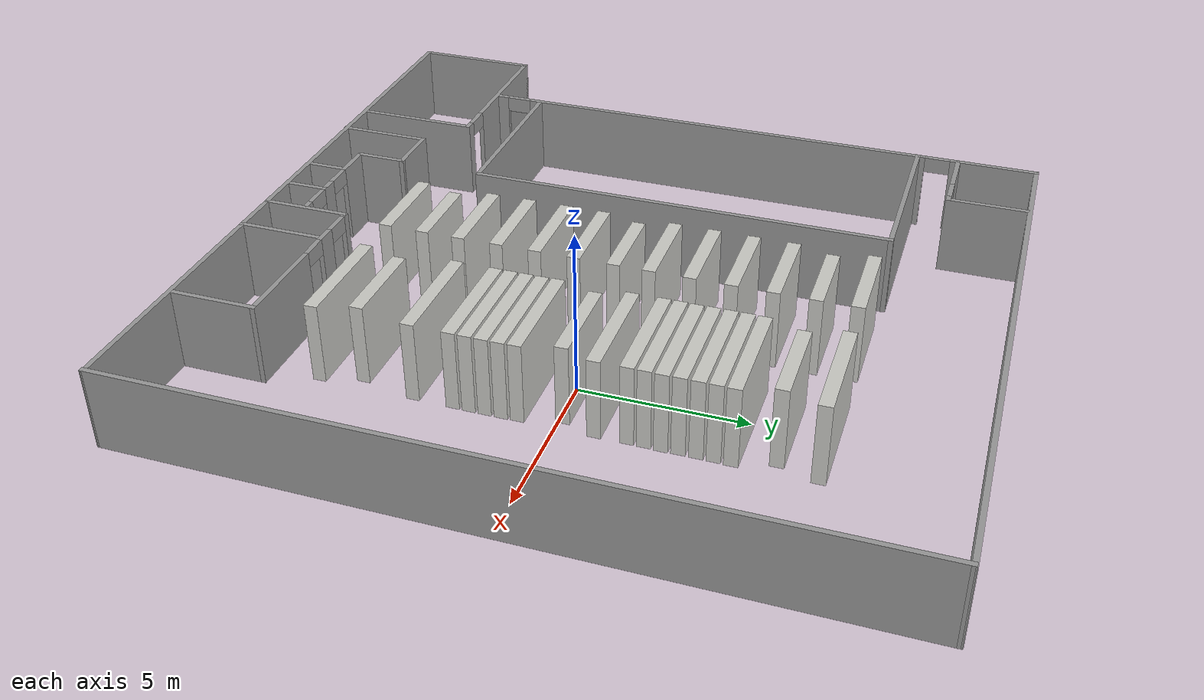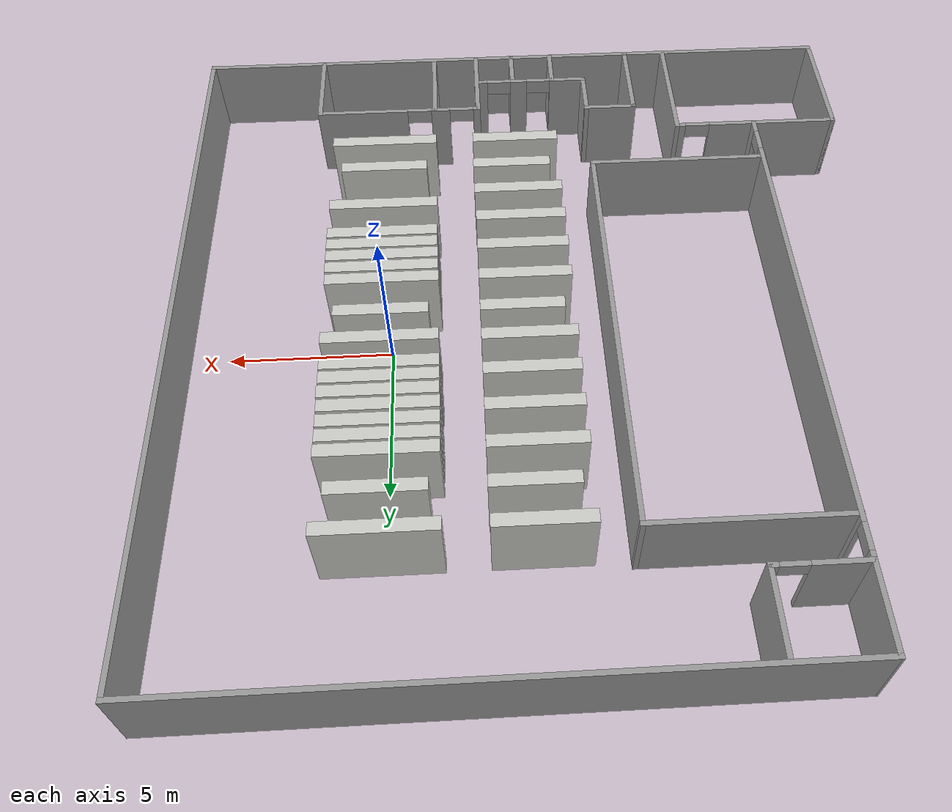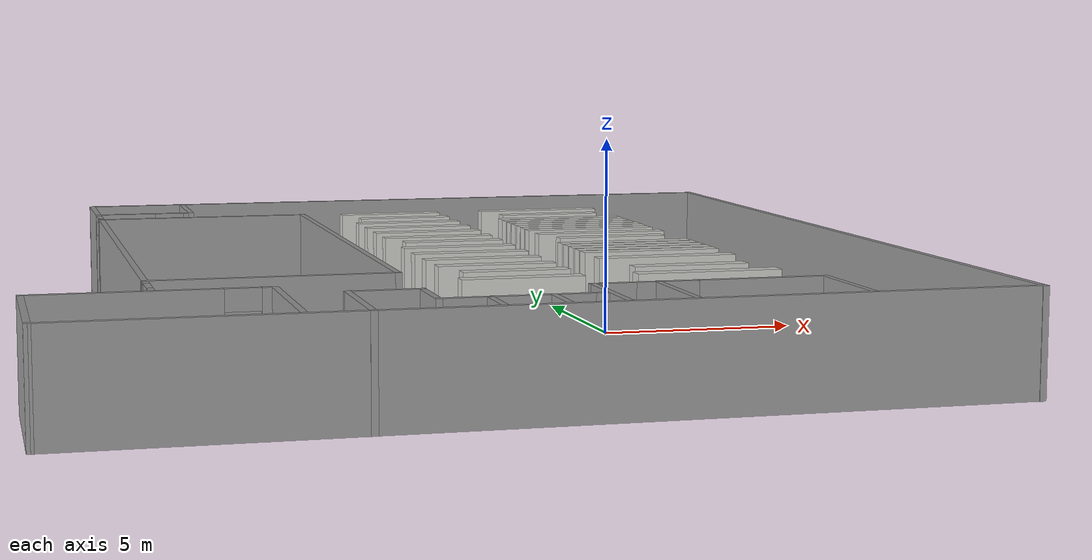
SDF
<?xml version='1.0'?>
<sdf version='1.6'>
  <model name='bi_mi_og'>
    <pose frame=''>-4.32052 0.063195 0 0 -0 0</pose>
    <link name='Wall_100'>
      <collision name='Wall_100_Collision'>
        <geometry>
          <box>
            <size>3.4 0.4 2.5</size>
          </box>
        </geometry>
        <pose frame=''>0 0 1.25 0 -0 0</pose>
      </collision>
      <visual name='Wall_100_Visual'>
        <pose frame=''>0 0 1.25 0 -0 0</pose>
        <geometry>
          <box>
            <size>3.4 0.4 2.5</size>
          </box>
        </geometry>
        <material>
          <script>
            <uri>file://media/materials/scripts/gazebo.material</uri>
            <name>Gazebo/CeilingTiled</name>
          </script>
          <ambient>0.435294 0.796078 0.67451 1</ambient>
        </material>
        <meta>
          <layer>0</layer>
        </meta>
      </visual>
      <pose frame=''>4.47382 -1.12861 0 0 -0 0</pose>
    </link>
    <link name='Wall_102'>
      <collision name='Wall_102_Collision'>
        <geometry>
          <box>
            <size>3.4 0.4 2.5</size>
          </box>
        </geometry>
        <pose frame=''>0 0 1.25 0 -0 0</pose>
      </collision>
      <visual name='Wall_102_Visual'>
        <pose frame=''>0 0 1.25 0 -0 0</pose>
        <geometry>
          <box>
            <size>3.4 0.4 2.5</size>
          </box>
        </geometry>
        <material>
          <script>
            <uri>file://media/materials/scripts/gazebo.material</uri>
            <name>Gazebo/CeilingTiled</name>
          </script>
          <ambient>0.435294 0.796078 0.67451 1</ambient>
        </material>
        <meta>
          <layer>0</layer>
        </meta>
      </visual>
      <pose frame=''>4.48903 -1.6002 0 0 -0 0</pose>
    </link>
    <link name='Wall_104'>
      <collision name='Wall_104_Collision'>
        <geometry>
          <box>
            <size>3.4 0.4 2.5</size>
          </box>
        </geometry>
        <pose frame=''>0 0 1.25 0 -0 0</pose>
      </collision>
      <visual name='Wall_104_Visual'>
        <pose frame=''>0 0 1.25 0 -0 0</pose>
        <geometry>
          <box>
            <size>3.4 0.4 2.5</size>
          </box>
        </geometry>
        <material>
          <script>
            <uri>file://media/materials/scripts/gazebo.material</uri>
            <name>Gazebo/CeilingTiled</name>
          </script>
          <ambient>0.435294 0.796078 0.67451 1</ambient>
        </material>
        <meta>
          <layer>0</layer>
        </meta>
      </visual>
      <pose frame=''>4.48824 -2.07161 0 0 -0 0</pose>
    </link>
    <link name='Wall_106'>
      <collision name='Wall_106_Collision'>
        <geometry>
          <box>
            <size>3.4 0.4 2.5</size>
          </box>
        </geometry>
        <pose frame=''>0 0 1.25 0 -0 0</pose>
      </collision>
      <visual name='Wall_106_Visual'>
        <pose frame=''>0 0 1.25 0 -0 0</pose>
        <geometry>
          <box>
            <size>3.4 0.4 2.5</size>
          </box>
        </geometry>
        <material>
          <script>
            <uri>file://media/materials/scripts/gazebo.material</uri>
            <name>Gazebo/CeilingTiled</name>
          </script>
          <ambient>0.435294 0.796078 0.67451 1</ambient>
        </material>
        <meta>
          <layer>0</layer>
        </meta>
      </visual>
      <pose frame=''>4.48903 -2.54278 0 0 -0 0</pose>
    </link>
    <link name='Wall_108'>
      <collision name='Wall_108_Collision'>
        <geometry>
          <box>
            <size>3.4 0.4 2.5</size>
          </box>
        </geometry>
        <pose frame=''>0 0 1.25 0 -0 0</pose>
      </collision>
      <visual name='Wall_108_Visual'>
        <pose frame=''>0 0 1.25 0 -0 0</pose>
        <geometry>
          <box>
            <size>3.4 0.4 2.5</size>
          </box>
        </geometry>
        <material>
          <script>
            <uri>file://media/materials/scripts/gazebo.material</uri>
            <name>Gazebo/CeilingTiled</name>
          </script>
          <ambient>0.435294 0.796078 0.67451 1</ambient>
        </material>
        <meta>
          <layer>0</layer>
        </meta>
      </visual>
      <pose frame=''>4.48824 -3.01499 0 0 -0 0</pose>
    </link>
    <link name='Wall_11'>
      <collision name='Wall_11_Collision'>
        <geometry>
          <box>
            <size>21.3169 0.15 2.5</size>
          </box>
        </geometry>
        <pose frame=''>0 0 1.25 0 -0 0</pose>
      </collision>
      <visual name='Wall_11_Visual'>
        <pose frame=''>0 0 1.25 0 -0 0</pose>
        <geometry>
          <box>
            <size>21.3169 0.15 2.5</size>
          </box>
        </geometry>
        <material>
          <script>
            <uri>file://media/materials/scripts/gazebo.material</uri>
            <name>Gazebo/Grey</name>
          </script>
          <ambient>1 1 1 1</ambient>
        </material>
        <meta>
          <layer>0</layer>
        </meta>
      </visual>
      <pose frame=''>-3.3e-05 -11.1726 0 0 -0 0.001286</pose>
    </link>
    <link name='Wall_110'>
      <collision name='Wall_110_Collision'>
        <geometry>
          <box>
            <size>3.4 0.4 2.5</size>
          </box>
        </geometry>
        <pose frame=''>0 0 1.25 0 -0 0</pose>
      </collision>
      <visual name='Wall_110_Visual'>
        <pose frame=''>0 0 1.25 0 -0 0</pose>
        <geometry>
          <box>
            <size>3.4 0.4 2.5</size>
          </box>
        </geometry>
        <material>
          <script>
            <uri>file://media/materials/scripts/gazebo.material</uri>
            <name>Gazebo/CeilingTiled</name>
          </script>
          <ambient>0.435294 0.796078 0.67451 1</ambient>
        </material>
        <meta>
          <layer>0</layer>
        </meta>
      </visual>
      <pose frame=''>4.47361 -4.21578 0 0 -0 0</pose>
    </link>
    <link name='Wall_112'>
      <collision name='Wall_112_Collision'>
        <geometry>
          <box>
            <size>3.4 0.4 2.5</size>
          </box>
        </geometry>
        <pose frame=''>0 0 1.25 0 -0 0</pose>
      </collision>
      <visual name='Wall_112_Visual'>
        <pose frame=''>0 0 1.25 0 -0 0</pose>
        <geometry>
          <box>
            <size>3.4 0.4 2.5</size>
          </box>
        </geometry>
        <material>
          <script>
            <uri>file://media/materials/scripts/gazebo.material</uri>
            <name>Gazebo/CeilingTiled</name>
          </script>
          <ambient>0.435294 0.796078 0.67451 1</ambient>
        </material>
        <meta>
          <layer>0</layer>
        </meta>
      </visual>
      <pose frame=''>4.48555 -7.08842 0 0 -0 0</pose>
    </link>
    <link name='Wall_114'>
      <collision name='Wall_114_Collision'>
        <geometry>
          <box>
            <size>2.75 0.4 2.5</size>
          </box>
        </geometry>
        <pose frame=''>0 0 1.25 0 -0 0</pose>
      </collision>
      <visual name='Wall_114_Visual'>
        <pose frame=''>0 0 1.25 0 -0 0</pose>
        <geometry>
          <box>
            <size>2.75 0.4 2.5</size>
          </box>
        </geometry>
        <material>
          <script>
            <uri>file://media/materials/scripts/gazebo.material</uri>
            <name>Gazebo/CeilingTiled</name>
          </script>
          <ambient>0.435294 0.796078 0.67451 1</ambient>
        </material>
        <meta>
          <layer>0</layer>
        </meta>
      </visual>
      <pose frame=''>4.48252 -5.8822 0 0 -0 0</pose>
    </link>
    <link name='Wall_13'>
      <collision name='Wall_13_Collision'>
        <geometry>
          <box>
            <size>22.5 0.15 2.5</size>
          </box>
        </geometry>
        <pose frame=''>0 0 1.25 0 -0 0</pose>
      </collision>
      <visual name='Wall_13_Visual'>
        <pose frame=''>0 0 1.25 0 -0 0</pose>
        <geometry>
          <box>
            <size>22.5 0.15 2.5</size>
          </box>
        </geometry>
        <material>
          <script>
            <uri>file://media/materials/scripts/gazebo.material</uri>
            <name>Gazebo/Grey</name>
          </script>
          <ambient>1 1 1 1</ambient>
        </material>
        <meta>
          <layer>0</layer>
        </meta>
      </visual>
      <pose frame=''>10.5834 -0.004082 0 0 -0 1.5708</pose>
    </link>
    <link name='Wall_15'>
      <collision name='Wall_15_Collision'>
        <geometry>
          <box>
            <size>18.6299 0.15 2.5</size>
          </box>
        </geometry>
        <pose frame=''>0 0 1.25 0 -0 0</pose>
      </collision>
      <visual name='Wall_15_Visual'>
        <pose frame=''>0 0 1.25 0 -0 0</pose>
        <geometry>
          <box>
            <size>18.6299 0.15 2.5</size>
          </box>
        </geometry>
        <material>
          <script>
            <uri>file://media/materials/scripts/gazebo.material</uri>
            <name>Gazebo/Grey</name>
          </script>
          <ambient>1 1 1 1</ambient>
        </material>
        <meta>
          <layer>0</layer>
        </meta>
      </visual>
      <pose frame=''>1.34347 11.1709 0 0 -0 -3.13942</pose>
    </link>
    <link name='Wall_17'>
      <collision name='Wall_17_Collision'>
        <geometry>
          <box>
            <size>2.6 0.15 2.5</size>
          </box>
        </geometry>
        <pose frame=''>0 0 1.25 0 -0 0</pose>
      </collision>
      <visual name='Wall_17_Visual'>
        <pose frame=''>0 0 1.25 0 -0 0</pose>
        <geometry>
          <box>
            <size>2.6 0.15 2.5</size>
          </box>
        </geometry>
        <material>
          <script>
            <uri>file://media/materials/scripts/gazebo.material</uri>
            <name>Gazebo/Grey</name>
          </script>
          <ambient>1 1 1 1</ambient>
        </material>
        <meta>
          <layer>0</layer>
        </meta>
      </visual>
      <pose frame=''>-7.89648 9.92581 0 0 -0 -1.5708</pose>
    </link>
    <link name='Wall_19'>
      <pose frame=''>-6.59648 8.70081 0 0 -0 0</pose>
      <visual name='Wall_19_Visual_0'>
        <pose frame=''>-0.546292 0 1.25 0 -0 0</pose>
        <geometry>
          <box>
            <size>1.65742 0.15 2.5</size>
          </box>
        </geometry>
        <material>
          <script>
            <uri>file://media/materials/scripts/gazebo.material</uri>
            <name>Gazebo/Grey</name>
          </script>
          <ambient>1 1 1 1</ambient>
        </material>
        <meta>
          <layer>0</layer>
        </meta>
      </visual>
      <collision name='Wall_19_Collision_0'>
        <geometry>
          <box>
            <size>1.65742 0.15 2.5</size>
          </box>
        </geometry>
        <pose frame=''>-0.546292 0 1.25 0 -0 0</pose>
      </collision>
      <visual name='Wall_19_Visual_1'>
        <pose frame=''>1.22871 0 1.25 0 -0 0</pose>
        <geometry>
          <box>
            <size>0.292584 0.15 2.5</size>
          </box>
        </geometry>
        <material>
          <script>
            <uri>file://media/materials/scripts/gazebo.material</uri>
            <name>Gazebo/Grey</name>
          </script>
          <ambient>1 1 1 1</ambient>
        </material>
        <meta>
          <layer>0</layer>
        </meta>
      </visual>
      <collision name='Wall_19_Collision_1'>
        <geometry>
          <box>
            <size>0.292584 0.15 2.5</size>
          </box>
        </geometry>
        <pose frame=''>1.22871 0 1.25 0 -0 0</pose>
      </collision>
      <visual name='Wall_19_Visual_2'>
        <pose frame=''>0.682416 0 2.25 0 -0 0</pose>
        <geometry>
          <box>
            <size>0.8 0.15 0.5</size>
          </box>
        </geometry>
        <material>
          <script>
            <uri>file://media/materials/scripts/gazebo.material</uri>
            <name>Gazebo/Grey</name>
          </script>
          <ambient>1 1 1 1</ambient>
        </material>
        <meta>
          <layer>0</layer>
        </meta>
      </visual>
      <collision name='Wall_19_Collision_2'>
        <geometry>
          <box>
            <size>0.8 0.15 0.5</size>
          </box>
        </geometry>
        <pose frame=''>0.682416 0 2.25 0 -0 0</pose>
      </collision>
    </link>
    <link name='Wall_20'>
      <collision name='Wall_20_Collision'>
        <geometry>
          <box>
            <size>2.5 0.15 2.5</size>
          </box>
        </geometry>
        <pose frame=''>0 0 1.25 0 -0 0</pose>
      </collision>
      <visual name='Wall_20_Visual'>
        <pose frame=''>0 0 1.25 0 -0 0</pose>
        <geometry>
          <box>
            <size>2.5 0.15 2.5</size>
          </box>
        </geometry>
        <material>
          <script>
            <uri>file://media/materials/scripts/gazebo.material</uri>
            <name>Gazebo/Grey</name>
          </script>
          <ambient>1 1 1 1</ambient>
        </material>
        <meta>
          <layer>0</layer>
        </meta>
      </visual>
      <pose frame=''>-5.29648 9.8758 0 0 -0 1.5708</pose>
    </link>
    <link name='Wall_22'>
      <pose frame=''>-7.89648 0.700805 0 0 -0 -1.5708</pose>
      <visual name='Wall_22_Visual_0'>
        <pose frame=''>-7.90982 0 1.25 0 -0 0</pose>
        <geometry>
          <box>
            <size>0.330356 0.15 2.5</size>
          </box>
        </geometry>
        <material>
          <script>
            <uri>file://media/materials/scripts/gazebo.material</uri>
            <name>Gazebo/Grey</name>
          </script>
          <ambient>1 1 1 1</ambient>
        </material>
        <meta>
          <layer>0</layer>
        </meta>
      </visual>
      <collision name='Wall_22_Collision_0'>
        <geometry>
          <box>
            <size>0.330356 0.15 2.5</size>
          </box>
        </geometry>
        <pose frame=''>-7.90982 0 1.25 0 -0 0</pose>
      </collision>
      <visual name='Wall_22_Visual_1'>
        <pose frame=''>-0.08023 0 1.25 0 -0 0</pose>
        <geometry>
          <box>
            <size>13.7288 0.15 2.5</size>
          </box>
        </geometry>
        <material>
          <script>
            <uri>file://media/materials/scripts/gazebo.material</uri>
            <name>Gazebo/Grey</name>
          </script>
          <ambient>1 1 1 1</ambient>
        </material>
        <meta>
          <layer>0</layer>
        </meta>
      </visual>
      <collision name='Wall_22_Collision_1'>
        <geometry>
          <box>
            <size>13.7288 0.15 2.5</size>
          </box>
        </geometry>
        <pose frame=''>-0.08023 0 1.25 0 -0 0</pose>
      </collision>
      <visual name='Wall_22_Visual_2'>
        <pose frame=''>7.82959 0 1.25 0 -0 0</pose>
        <geometry>
          <box>
            <size>0.490815 0.15 2.5</size>
          </box>
        </geometry>
        <material>
          <script>
            <uri>file://media/materials/scripts/gazebo.material</uri>
            <name>Gazebo/Grey</name>
          </script>
          <ambient>1 1 1 1</ambient>
        </material>
        <meta>
          <layer>0</layer>
        </meta>
      </visual>
      <collision name='Wall_22_Collision_2'>
        <geometry>
          <box>
            <size>0.490815 0.15 2.5</size>
          </box>
        </geometry>
        <pose frame=''>7.82959 0 1.25 0 -0 0</pose>
      </collision>
      <visual name='Wall_22_Visual_3'>
        <pose frame=''>-7.34464 0 2.25 0 -0 0</pose>
        <geometry>
          <box>
            <size>0.8 0.15 0.5</size>
          </box>
        </geometry>
        <material>
          <script>
            <uri>file://media/materials/scripts/gazebo.material</uri>
            <name>Gazebo/Grey</name>
          </script>
          <ambient>1 1 1 1</ambient>
        </material>
        <meta>
          <layer>0</layer>
        </meta>
      </visual>
      <collision name='Wall_22_Collision_3'>
        <geometry>
          <box>
            <size>0.8 0.15 0.5</size>
          </box>
        </geometry>
        <pose frame=''>-7.34464 0 2.25 0 -0 0</pose>
      </collision>
      <visual name='Wall_22_Visual_4'>
        <pose frame=''>7.18419 0 2.25 0 -0 0</pose>
        <geometry>
          <box>
            <size>0.8 0.15 0.5</size>
          </box>
        </geometry>
        <material>
          <script>
            <uri>file://media/materials/scripts/gazebo.material</uri>
            <name>Gazebo/Grey</name>
          </script>
          <ambient>1 1 1 1</ambient>
        </material>
        <meta>
          <layer>0</layer>
        </meta>
      </visual>
      <collision name='Wall_22_Collision_4'>
        <geometry>
          <box>
            <size>0.8 0.15 0.5</size>
          </box>
        </geometry>
        <pose frame=''>7.18419 0 2.25 0 -0 0</pose>
      </collision>
    </link>
    <link name='Wall_24'>
      <collision name='Wall_24_Collision'>
        <geometry>
          <box>
            <size>4 0.15 2.5</size>
          </box>
        </geometry>
        <pose frame=''>0 0 1.25 0 -0 0</pose>
      </collision>
      <visual name='Wall_24_Visual'>
        <pose frame=''>0 0 1.25 0 -0 0</pose>
        <geometry>
          <box>
            <size>4 0.15 2.5</size>
          </box>
        </geometry>
        <material>
          <script>
            <uri>file://media/materials/scripts/gazebo.material</uri>
            <name>Gazebo/Grey</name>
          </script>
          <ambient>1 1 1 1</ambient>
        </material>
        <meta>
          <layer>0</layer>
        </meta>
      </visual>
      <pose frame=''>-10.5835 -9.2612 0 0 -0 1.5708</pose>
    </link>
    <link name='Wall_26'>
      <pose frame=''>-7.94498 -7.3362 0 0 -0 0</pose>
      <visual name='Wall_26_Visual_0'>
        <pose frame=''>-0.579795 0 1.25 0 -0 0</pose>
        <geometry>
          <box>
            <size>4.26728 0.15 2.5</size>
          </box>
        </geometry>
        <material>
          <script>
            <uri>file://media/materials/scripts/gazebo.material</uri>
            <name>Gazebo/Grey</name>
          </script>
          <ambient>1 1 1 1</ambient>
        </material>
        <meta>
          <layer>0</layer>
        </meta>
      </visual>
      <collision name='Wall_26_Collision_0'>
        <geometry>
          <box>
            <size>4.26728 0.15 2.5</size>
          </box>
        </geometry>
        <pose frame=''>-0.579795 0 1.25 0 -0 0</pose>
      </collision>
      <visual name='Wall_26_Visual_1'>
        <pose frame=''>2.53364 0 1.25 0 -0 0</pose>
        <geometry>
          <box>
            <size>0.359591 0.15 2.5</size>
          </box>
        </geometry>
        <material>
          <script>
            <uri>file://media/materials/scripts/gazebo.material</uri>
            <name>Gazebo/Grey</name>
          </script>
          <ambient>1 1 1 1</ambient>
        </material>
        <meta>
          <layer>0</layer>
        </meta>
      </visual>
      <collision name='Wall_26_Collision_1'>
        <geometry>
          <box>
            <size>0.359591 0.15 2.5</size>
          </box>
        </geometry>
        <pose frame=''>2.53364 0 1.25 0 -0 0</pose>
      </collision>
      <visual name='Wall_26_Visual_2'>
        <pose frame=''>1.95384 0 2.25 0 -0 0</pose>
        <geometry>
          <box>
            <size>0.8 0.15 0.5</size>
          </box>
        </geometry>
        <material>
          <script>
            <uri>file://media/materials/scripts/gazebo.material</uri>
            <name>Gazebo/Grey</name>
          </script>
          <ambient>1 1 1 1</ambient>
        </material>
        <meta>
          <layer>0</layer>
        </meta>
      </visual>
      <collision name='Wall_26_Collision_2'>
        <geometry>
          <box>
            <size>0.8 0.15 0.5</size>
          </box>
        </geometry>
        <pose frame=''>1.95384 0 2.25 0 -0 0</pose>
      </collision>
    </link>
    <link name='Wall_28'>
      <collision name='Wall_28_Collision'>
        <geometry>
          <box>
            <size>3.9 0.15 2.5</size>
          </box>
        </geometry>
        <pose frame=''>0 0 1.25 0 -0 0</pose>
      </collision>
      <visual name='Wall_28_Visual'>
        <pose frame=''>0 0 1.25 0 -0 0</pose>
        <geometry>
          <box>
            <size>3.9 0.15 2.5</size>
          </box>
        </geometry>
        <material>
          <script>
            <uri>file://media/materials/scripts/gazebo.material</uri>
            <name>Gazebo/Grey</name>
          </script>
          <ambient>1 1 1 1</ambient>
        </material>
        <meta>
          <layer>0</layer>
        </meta>
      </visual>
      <pose frame=''>-5.30648 -9.2112 0 0 -0 -1.5708</pose>
    </link>
    <link name='Wall_30'>
      <collision name='Wall_30_Collision'>
        <geometry>
          <box>
            <size>5.75 0.15 2.5</size>
          </box>
        </geometry>
        <pose frame=''>0 0 1.25 0 -0 0</pose>
      </collision>
      <visual name='Wall_30_Visual'>
        <pose frame=''>0 0 1.25 0 -0 0</pose>
        <geometry>
          <box>
            <size>5.75 0.15 2.5</size>
          </box>
        </geometry>
        <material>
          <script>
            <uri>file://media/materials/scripts/gazebo.material</uri>
            <name>Gazebo/Grey</name>
          </script>
          <ambient>1 1 1 1</ambient>
        </material>
        <meta>
          <layer>0</layer>
        </meta>
      </visual>
      <pose frame=''>-5.10418 -5.69691 0 0 -0 0</pose>
    </link>
    <link name='Wall_31'>
      <collision name='Wall_31_Collision'>
        <geometry>
          <box>
            <size>13.25 0.15 2.5</size>
          </box>
        </geometry>
        <pose frame=''>0 0 1.25 0 -0 0</pose>
      </collision>
      <visual name='Wall_31_Visual'>
        <pose frame=''>0 0 1.25 0 -0 0</pose>
        <geometry>
          <box>
            <size>13.25 0.15 2.5</size>
          </box>
        </geometry>
        <material>
          <script>
            <uri>file://media/materials/scripts/gazebo.material</uri>
            <name>Gazebo/Grey</name>
          </script>
          <ambient>1 1 1 1</ambient>
        </material>
        <meta>
          <layer>0</layer>
        </meta>
      </visual>
      <pose frame=''>-2.30418 0.853088 0 0 -0 1.5708</pose>
    </link>
    <link name='Wall_32'>
      <collision name='Wall_32_Collision'>
        <geometry>
          <box>
            <size>5.75 0.15 2.5</size>
          </box>
        </geometry>
        <pose frame=''>0 0 1.25 0 -0 0</pose>
      </collision>
      <visual name='Wall_32_Visual'>
        <pose frame=''>0 0 1.25 0 -0 0</pose>
        <geometry>
          <box>
            <size>5.75 0.15 2.5</size>
          </box>
        </geometry>
        <material>
          <script>
            <uri>file://media/materials/scripts/gazebo.material</uri>
            <name>Gazebo/Grey</name>
          </script>
          <ambient>1 1 1 1</ambient>
        </material>
        <meta>
          <layer>0</layer>
        </meta>
      </visual>
      <pose frame=''>-5.10418 7.40309 0 0 -0 3.14159</pose>
    </link>
    <link name='Wall_34'>
      <collision name='Wall_34_Collision'>
        <geometry>
          <box>
            <size>2.75 0.15 2.5</size>
          </box>
        </geometry>
        <pose frame=''>0 0 1.25 0 -0 0</pose>
      </collision>
      <visual name='Wall_34_Visual'>
        <pose frame=''>0 0 1.25 0 -0 0</pose>
        <geometry>
          <box>
            <size>2.75 0.15 2.5</size>
          </box>
        </geometry>
        <material>
          <script>
            <uri>file://media/materials/scripts/gazebo.material</uri>
            <name>Gazebo/Grey</name>
          </script>
          <ambient>1 1 1 1</ambient>
        </material>
        <meta>
          <layer>0</layer>
        </meta>
      </visual>
      <pose frame=''>6.70073 -9.83844 0 0 -0 1.5708</pose>
    </link>
    <link name='Wall_35'>
      <pose frame=''>4.02573 -8.53843 0 0 -0 3.14159</pose>
      <visual name='Wall_35_Visual_0'>
        <pose frame=''>-1.23302 0 1.25 0 -0 0</pose>
        <geometry>
          <box>
            <size>3.03397 0.15 2.5</size>
          </box>
        </geometry>
        <material>
          <script>
            <uri>file://media/materials/scripts/gazebo.material</uri>
            <name>Gazebo/Grey</name>
          </script>
          <ambient>1 1 1 1</ambient>
        </material>
        <meta>
          <layer>0</layer>
        </meta>
      </visual>
      <collision name='Wall_35_Collision_0'>
        <geometry>
          <box>
            <size>3.03397 0.15 2.5</size>
          </box>
        </geometry>
        <pose frame=''>-1.23302 0 1.25 0 -0 0</pose>
      </collision>
      <visual name='Wall_35_Visual_1'>
        <pose frame=''>1.39809 0 1.25 0 -0 0</pose>
        <geometry>
          <box>
            <size>0.62824 0.15 2.5</size>
          </box>
        </geometry>
        <material>
          <script>
            <uri>file://media/materials/scripts/gazebo.material</uri>
            <name>Gazebo/Grey</name>
          </script>
          <ambient>1 1 1 1</ambient>
        </material>
        <meta>
          <layer>0</layer>
        </meta>
      </visual>
      <collision name='Wall_35_Collision_1'>
        <geometry>
          <box>
            <size>0.62824 0.15 2.5</size>
          </box>
        </geometry>
        <pose frame=''>1.39809 0 1.25 0 -0 0</pose>
      </collision>
      <visual name='Wall_35_Visual_2'>
        <pose frame=''>2.6311 0 1.25 0 -0 0</pose>
        <geometry>
          <box>
            <size>0.237794 0.15 2.5</size>
          </box>
        </geometry>
        <material>
          <script>
            <uri>file://media/materials/scripts/gazebo.material</uri>
            <name>Gazebo/Grey</name>
          </script>
          <ambient>1 1 1 1</ambient>
        </material>
        <meta>
          <layer>0</layer>
        </meta>
      </visual>
      <collision name='Wall_35_Collision_2'>
        <geometry>
          <box>
            <size>0.237794 0.15 2.5</size>
          </box>
        </geometry>
        <pose frame=''>2.6311 0 1.25 0 -0 0</pose>
      </collision>
      <visual name='Wall_35_Visual_3'>
        <pose frame=''>0.683966 0 2.25 0 -0 0</pose>
        <geometry>
          <box>
            <size>0.8 0.15 0.5</size>
          </box>
        </geometry>
        <material>
          <script>
            <uri>file://media/materials/scripts/gazebo.material</uri>
            <name>Gazebo/Grey</name>
          </script>
          <ambient>1 1 1 1</ambient>
        </material>
        <meta>
          <layer>0</layer>
        </meta>
      </visual>
      <collision name='Wall_35_Collision_3'>
        <geometry>
          <box>
            <size>0.8 0.15 0.5</size>
          </box>
        </geometry>
        <pose frame=''>0.683966 0 2.25 0 -0 0</pose>
      </collision>
      <visual name='Wall_35_Visual_4'>
        <pose frame=''>2.11221 0 2.25 0 -0 0</pose>
        <geometry>
          <box>
            <size>0.8 0.15 0.5</size>
          </box>
        </geometry>
        <material>
          <script>
            <uri>file://media/materials/scripts/gazebo.material</uri>
            <name>Gazebo/Grey</name>
          </script>
          <ambient>1 1 1 1</ambient>
        </material>
        <meta>
          <layer>0</layer>
        </meta>
      </visual>
      <collision name='Wall_35_Collision_4'>
        <geometry>
          <box>
            <size>0.8 0.15 0.5</size>
          </box>
        </geometry>
        <pose frame=''>2.11221 0 2.25 0 -0 0</pose>
      </collision>
    </link>
    <link name='Wall_36'>
      <collision name='Wall_36_Collision'>
        <geometry>
          <box>
            <size>2.75 0.15 2.5</size>
          </box>
        </geometry>
        <pose frame=''>0 0 1.25 0 -0 0</pose>
      </collision>
      <visual name='Wall_36_Visual'>
        <pose frame=''>0 0 1.25 0 -0 0</pose>
        <geometry>
          <box>
            <size>2.75 0.15 2.5</size>
          </box>
        </geometry>
        <material>
          <script>
            <uri>file://media/materials/scripts/gazebo.material</uri>
            <name>Gazebo/Grey</name>
          </script>
          <ambient>1 1 1 1</ambient>
        </material>
        <meta>
          <layer>0</layer>
        </meta>
      </visual>
      <pose frame=''>1.35073 -9.83844 0 0 -0 -1.5708</pose>
    </link>
    <link name='Wall_38'>
      <collision name='Wall_38_Collision'>
        <geometry>
          <box>
            <size>2.75 0.15 2.5</size>
          </box>
        </geometry>
        <pose frame=''>0 0 1.25 0 -0 0</pose>
      </collision>
      <visual name='Wall_38_Visual'>
        <pose frame=''>0 0 1.25 0 -0 0</pose>
        <geometry>
          <box>
            <size>2.75 0.15 2.5</size>
          </box>
        </geometry>
        <material>
          <script>
            <uri>file://media/materials/scripts/gazebo.material</uri>
            <name>Gazebo/Grey</name>
          </script>
          <ambient>1 1 1 1</ambient>
        </material>
        <meta>
          <layer>0</layer>
        </meta>
      </visual>
      <pose frame=''>2.81881 -9.8639 0 0 -0 -1.5708</pose>
    </link>
    <link name='Wall_40'>
      <pose frame=''>-0.499477 -9.89119 0 0 -0 3.14159</pose>
      <visual name='Wall_40_Visual_0'>
        <pose frame=''>-1.70534 0 1.25 0 -0 0</pose>
        <geometry>
          <box>
            <size>0.43932 0.15 2.5</size>
          </box>
        </geometry>
        <material>
          <script>
            <uri>file://media/materials/scripts/gazebo.material</uri>
            <name>Gazebo/Grey</name>
          </script>
          <ambient>1 1 1 1</ambient>
        </material>
        <meta>
          <layer>0</layer>
        </meta>
      </visual>
      <collision name='Wall_40_Collision_0'>
        <geometry>
          <box>
            <size>0.43932 0.15 2.5</size>
          </box>
        </geometry>
        <pose frame=''>-1.70534 0 1.25 0 -0 0</pose>
      </collision>
      <visual name='Wall_40_Visual_1'>
        <pose frame=''>-0.401819 0 1.25 0 -0 0</pose>
        <geometry>
          <box>
            <size>0.567723 0.15 2.5</size>
          </box>
        </geometry>
        <material>
          <script>
            <uri>file://media/materials/scripts/gazebo.material</uri>
            <name>Gazebo/Grey</name>
          </script>
          <ambient>1 1 1 1</ambient>
        </material>
        <meta>
          <layer>0</layer>
        </meta>
      </visual>
      <collision name='Wall_40_Collision_1'>
        <geometry>
          <box>
            <size>0.567723 0.15 2.5</size>
          </box>
        </geometry>
        <pose frame=''>-0.401819 0 1.25 0 -0 0</pose>
      </collision>
      <visual name='Wall_40_Visual_2'>
        <pose frame=''>1.30352 0 1.25 0 -0 0</pose>
        <geometry>
          <box>
            <size>1.24296 0.15 2.5</size>
          </box>
        </geometry>
        <material>
          <script>
            <uri>file://media/materials/scripts/gazebo.material</uri>
            <name>Gazebo/Grey</name>
          </script>
          <ambient>1 1 1 1</ambient>
        </material>
        <meta>
          <layer>0</layer>
        </meta>
      </visual>
      <collision name='Wall_40_Collision_2'>
        <geometry>
          <box>
            <size>1.24296 0.15 2.5</size>
          </box>
        </geometry>
        <pose frame=''>1.30352 0 1.25 0 -0 0</pose>
      </collision>
      <visual name='Wall_40_Visual_3'>
        <pose frame=''>-1.08568 0 2.25 0 -0 0</pose>
        <geometry>
          <box>
            <size>0.8 0.15 0.5</size>
          </box>
        </geometry>
        <material>
          <script>
            <uri>file://media/materials/scripts/gazebo.material</uri>
            <name>Gazebo/Grey</name>
          </script>
          <ambient>1 1 1 1</ambient>
        </material>
        <meta>
          <layer>0</layer>
        </meta>
      </visual>
      <collision name='Wall_40_Collision_3'>
        <geometry>
          <box>
            <size>0.8 0.15 0.5</size>
          </box>
        </geometry>
        <pose frame=''>-1.08568 0 2.25 0 -0 0</pose>
      </collision>
      <visual name='Wall_40_Visual_4'>
        <pose frame=''>0.282043 0 2.25 0 -0 0</pose>
        <geometry>
          <box>
            <size>0.8 0.15 0.5</size>
          </box>
        </geometry>
        <material>
          <script>
            <uri>file://media/materials/scripts/gazebo.material</uri>
            <name>Gazebo/Grey</name>
          </script>
          <ambient>1 1 1 1</ambient>
        </material>
        <meta>
          <layer>0</layer>
        </meta>
      </visual>
      <collision name='Wall_40_Collision_4'>
        <geometry>
          <box>
            <size>0.8 0.15 0.5</size>
          </box>
        </geometry>
        <pose frame=''>0.282043 0 2.25 0 -0 0</pose>
      </collision>
    </link>
    <link name='Wall_42'>
      <collision name='Wall_42_Collision'>
        <geometry>
          <box>
            <size>1.65 0.15 2.5</size>
          </box>
        </geometry>
        <pose frame=''>0 0 1.25 0 -0 0</pose>
      </collision>
      <visual name='Wall_42_Visual'>
        <pose frame=''>0 0 1.25 0 -0 0</pose>
        <geometry>
          <box>
            <size>1.65 0.15 2.5</size>
          </box>
        </geometry>
        <material>
          <script>
            <uri>file://media/materials/scripts/gazebo.material</uri>
            <name>Gazebo/Grey</name>
          </script>
          <ambient>1 1 1 1</ambient>
        </material>
        <meta>
          <layer>0</layer>
        </meta>
      </visual>
      <pose frame=''>-2.34948 -9.14119 0 0 -0 1.5708</pose>
    </link>
    <link name='Wall_44'>
      <collision name='Wall_44_Collision'>
        <geometry>
          <box>
            <size>1.75 0.15 2.5</size>
          </box>
        </geometry>
        <pose frame=''>0 0 1.25 0 -0 0</pose>
      </collision>
      <visual name='Wall_44_Visual'>
        <pose frame=''>0 0 1.25 0 -0 0</pose>
        <geometry>
          <box>
            <size>1.75 0.15 2.5</size>
          </box>
        </geometry>
        <material>
          <script>
            <uri>file://media/materials/scripts/gazebo.material</uri>
            <name>Gazebo/Grey</name>
          </script>
          <ambient>1 1 1 1</ambient>
        </material>
        <meta>
          <layer>0</layer>
        </meta>
      </visual>
      <pose frame=''>-3.14948 -8.39119 0 0 -0 3.14159</pose>
    </link>
    <link name='Wall_45'>
      <collision name='Wall_45_Collision'>
        <geometry>
          <box>
            <size>2.95 0.15 2.5</size>
          </box>
        </geometry>
        <pose frame=''>0 0 1.25 0 -0 0</pose>
      </collision>
      <visual name='Wall_45_Visual'>
        <pose frame=''>0 0 1.25 0 -0 0</pose>
        <geometry>
          <box>
            <size>2.95 0.15 2.5</size>
          </box>
        </geometry>
        <material>
          <script>
            <uri>file://media/materials/scripts/gazebo.material</uri>
            <name>Gazebo/Grey</name>
          </script>
          <ambient>1 1 1 1</ambient>
        </material>
        <meta>
          <layer>0</layer>
        </meta>
      </visual>
      <pose frame=''>-3.94948 -9.7912 0 0 -0 -1.5708</pose>
    </link>
    <link name='Wall_47'>
      <collision name='Wall_47_Collision'>
        <geometry>
          <box>
            <size>1.4 0.15 2.5</size>
          </box>
        </geometry>
        <pose frame=''>0 0 1.25 0 -0 0</pose>
      </collision>
      <visual name='Wall_47_Visual'>
        <pose frame=''>0 0 1.25 0 -0 0</pose>
        <geometry>
          <box>
            <size>1.4 0.15 2.5</size>
          </box>
        </geometry>
        <material>
          <script>
            <uri>file://media/materials/scripts/gazebo.material</uri>
            <name>Gazebo/Grey</name>
          </script>
          <ambient>1 1 1 1</ambient>
        </material>
        <meta>
          <layer>0</layer>
        </meta>
      </visual>
      <pose frame=''>-1.26448 -10.5162 0 0 -0 -1.5708</pose>
    </link>
    <link name='Wall_49'>
      <collision name='Wall_49_Collision'>
        <geometry>
          <box>
            <size>1.4 0.15 2.5</size>
          </box>
        </geometry>
        <pose frame=''>0 0 1.25 0 -0 0</pose>
      </collision>
      <visual name='Wall_49_Visual'>
        <pose frame=''>0 0 1.25 0 -0 0</pose>
        <geometry>
          <box>
            <size>1.4 0.15 2.5</size>
          </box>
        </geometry>
        <material>
          <script>
            <uri>file://media/materials/scripts/gazebo.material</uri>
            <name>Gazebo/Grey</name>
          </script>
          <ambient>1 1 1 1</ambient>
        </material>
        <meta>
          <layer>0</layer>
        </meta>
      </visual>
      <pose frame=''>0.103523 -10.5162 0 0 -0 -1.5708</pose>
    </link>
    <link name='Wall_51'>
      <collision name='Wall_51_Collision'>
        <geometry>
          <box>
            <size>2.8 0.4 2.5</size>
          </box>
        </geometry>
        <pose frame=''>0 0 1.25 0 -0 0</pose>
      </collision>
      <visual name='Wall_51_Visual'>
        <pose frame=''>0 0 1.25 0 -0 0</pose>
        <geometry>
          <box>
            <size>2.8 0.4 2.5</size>
          </box>
        </geometry>
        <material>
          <script>
            <uri>file://media/materials/scripts/gazebo.material</uri>
            <name>Gazebo/CeilingTiled</name>
          </script>
          <ambient>0.435294 0.796078 0.67451 1</ambient>
        </material>
        <meta>
          <layer>0</layer>
        </meta>
      </visual>
      <pose frame=''>0.173523 -7.08307 0 0 -0 0</pose>
    </link>
    <link name='Wall_53'>
      <collision name='Wall_53_Collision'>
        <geometry>
          <box>
            <size>2.5 0.4 2.5</size>
          </box>
        </geometry>
        <pose frame=''>0 0 1.25 0 -0 0</pose>
      </collision>
      <visual name='Wall_53_Visual'>
        <pose frame=''>0 0 1.25 0 -0 0</pose>
        <geometry>
          <box>
            <size>2.5 0.4 2.5</size>
          </box>
        </geometry>
        <material>
          <script>
            <uri>file://media/materials/scripts/gazebo.material</uri>
            <name>Gazebo/CeilingTiled</name>
          </script>
          <ambient>0.435294 0.796078 0.67451 1</ambient>
        </material>
        <meta>
          <layer>0</layer>
        </meta>
      </visual>
      <pose frame=''>0.341315 -5.87999 0 0 -0 0</pose>
    </link>
    <link name='Wall_55'>
      <collision name='Wall_55_Collision'>
        <geometry>
          <box>
            <size>2.8 0.4 2.5</size>
          </box>
        </geometry>
        <pose frame=''>0 0 1.25 0 -0 0</pose>
      </collision>
      <visual name='Wall_55_Visual'>
        <pose frame=''>0 0 1.25 0 -0 0</pose>
        <geometry>
          <box>
            <size>2.8 0.4 2.5</size>
          </box>
        </geometry>
        <material>
          <script>
            <uri>file://media/materials/scripts/gazebo.material</uri>
            <name>Gazebo/CeilingTiled</name>
          </script>
          <ambient>0.435294 0.796078 0.67451 1</ambient>
        </material>
        <meta>
          <layer>0</layer>
        </meta>
      </visual>
      <pose frame=''>0.185205 -4.72831 0 0 -0 0</pose>
    </link>
    <link name='Wall_57'>
      <collision name='Wall_57_Collision'>
        <geometry>
          <box>
            <size>2.8 0.4 2.5</size>
          </box>
        </geometry>
        <pose frame=''>0 0 1.25 0 -0 0</pose>
      </collision>
      <visual name='Wall_57_Visual'>
        <pose frame=''>0 0 1.25 0 -0 0</pose>
        <geometry>
          <box>
            <size>2.8 0.4 2.5</size>
          </box>
        </geometry>
        <material>
          <script>
            <uri>file://media/materials/scripts/gazebo.material</uri>
            <name>Gazebo/CeilingTiled</name>
          </script>
          <ambient>0.435294 0.796078 0.67451 1</ambient>
        </material>
        <meta>
          <layer>0</layer>
        </meta>
      </visual>
      <pose frame=''>0.167046 -3.52746 0 0 -0 0</pose>
    </link>
    <link name='Wall_60'>
      <collision name='Wall_60_Collision'>
        <geometry>
          <box>
            <size>2.8 0.4 2.5</size>
          </box>
        </geometry>
        <pose frame=''>0 0 1.25 0 -0 0</pose>
      </collision>
      <visual name='Wall_60_Visual'>
        <pose frame=''>0 0 1.25 0 -0 0</pose>
        <geometry>
          <box>
            <size>2.8 0.4 2.5</size>
          </box>
        </geometry>
        <material>
          <script>
            <uri>file://media/materials/scripts/gazebo.material</uri>
            <name>Gazebo/CeilingTiled</name>
          </script>
          <ambient>0.435294 0.796078 0.67451 1</ambient>
        </material>
        <meta>
          <layer>0</layer>
        </meta>
      </visual>
      <pose frame=''>0.166915 -2.32446 0 0 -0 0</pose>
    </link>
    <link name='Wall_62'>
      <collision name='Wall_62_Collision'>
        <geometry>
          <box>
            <size>2.8 0.4 2.5</size>
          </box>
        </geometry>
        <pose frame=''>0 0 1.25 0 -0 0</pose>
      </collision>
      <visual name='Wall_62_Visual'>
        <pose frame=''>0 0 1.25 0 -0 0</pose>
        <geometry>
          <box>
            <size>2.8 0.4 2.5</size>
          </box>
        </geometry>
        <material>
          <script>
            <uri>file://media/materials/scripts/gazebo.material</uri>
            <name>Gazebo/CeilingTiled</name>
          </script>
          <ambient>0.435294 0.796078 0.67451 1</ambient>
        </material>
        <meta>
          <layer>0</layer>
        </meta>
      </visual>
      <pose frame=''>0.167307 -1.12146 0 0 -0 0</pose>
    </link>
    <link name='Wall_64'>
      <collision name='Wall_64_Collision'>
        <geometry>
          <box>
            <size>2.5 0.4 2.5</size>
          </box>
        </geometry>
        <pose frame=''>0 0 1.25 0 -0 0</pose>
      </collision>
      <visual name='Wall_64_Visual'>
        <pose frame=''>0 0 1.25 0 -0 0</pose>
        <geometry>
          <box>
            <size>2.5 0.4 2.5</size>
          </box>
        </geometry>
        <material>
          <script>
            <uri>file://media/materials/scripts/gazebo.material</uri>
            <name>Gazebo/CeilingTiled</name>
          </script>
          <ambient>0.435294 0.796078 0.67451 1</ambient>
        </material>
        <meta>
          <layer>0</layer>
        </meta>
      </visual>
      <pose frame=''>0.318523 0.081805 0 0 -0 0</pose>
    </link>
    <link name='Wall_66'>
      <collision name='Wall_66_Collision'>
        <geometry>
          <box>
            <size>2.8 0.4 2.5</size>
          </box>
        </geometry>
        <pose frame=''>0 0 1.25 0 -0 0</pose>
      </collision>
      <visual name='Wall_66_Visual'>
        <pose frame=''>0 0 1.25 0 -0 0</pose>
        <geometry>
          <box>
            <size>2.8 0.4 2.5</size>
          </box>
        </geometry>
        <material>
          <script>
            <uri>file://media/materials/scripts/gazebo.material</uri>
            <name>Gazebo/CeilingTiled</name>
          </script>
          <ambient>0.435294 0.796078 0.67451 1</ambient>
        </material>
        <meta>
          <layer>0</layer>
        </meta>
      </visual>
      <pose frame=''>0.167046 1.14222 0 0 -0 0</pose>
    </link>
    <link name='Wall_68'>
      <collision name='Wall_68_Collision'>
        <geometry>
          <box>
            <size>2.8 0.4 2.5</size>
          </box>
        </geometry>
        <pose frame=''>0 0 1.25 0 -0 0</pose>
      </collision>
      <visual name='Wall_68_Visual'>
        <pose frame=''>0 0 1.25 0 -0 0</pose>
        <geometry>
          <box>
            <size>2.8 0.4 2.5</size>
          </box>
        </geometry>
        <material>
          <script>
            <uri>file://media/materials/scripts/gazebo.material</uri>
            <name>Gazebo/CeilingTiled</name>
          </script>
          <ambient>0.435294 0.796078 0.67451 1</ambient>
        </material>
        <meta>
          <layer>0</layer>
        </meta>
      </visual>
      <pose frame=''>0.167176 2.34767 0 0 -0 0</pose>
    </link>
    <link name='Wall_70'>
      <collision name='Wall_70_Collision'>
        <geometry>
          <box>
            <size>2.8 0.4 2.5</size>
          </box>
        </geometry>
        <pose frame=''>0 0 1.25 0 -0 0</pose>
      </collision>
      <visual name='Wall_70_Visual'>
        <pose frame=''>0 0 1.25 0 -0 0</pose>
        <geometry>
          <box>
            <size>2.8 0.4 2.5</size>
          </box>
        </geometry>
        <material>
          <script>
            <uri>file://media/materials/scripts/gazebo.material</uri>
            <name>Gazebo/CeilingTiled</name>
          </script>
          <ambient>0.435294 0.796078 0.67451 1</ambient>
        </material>
        <meta>
          <layer>0</layer>
        </meta>
      </visual>
      <pose frame=''>0.167307 3.5508 0 0 -0 0</pose>
    </link>
    <link name='Wall_72'>
      <collision name='Wall_72_Collision'>
        <geometry>
          <box>
            <size>2.8 0.4 2.5</size>
          </box>
        </geometry>
        <pose frame=''>0 0 1.25 0 -0 0</pose>
      </collision>
      <visual name='Wall_72_Visual'>
        <pose frame=''>0 0 1.25 0 -0 0</pose>
        <geometry>
          <box>
            <size>2.8 0.4 2.5</size>
          </box>
        </geometry>
        <material>
          <script>
            <uri>file://media/materials/scripts/gazebo.material</uri>
            <name>Gazebo/CeilingTiled</name>
          </script>
          <ambient>0.435294 0.796078 0.67451 1</ambient>
        </material>
        <meta>
          <layer>0</layer>
        </meta>
      </visual>
      <pose frame=''>0.166699 4.7538 0 0 -0 0</pose>
    </link>
    <link name='Wall_74'>
      <collision name='Wall_74_Collision'>
        <geometry>
          <box>
            <size>2.5 0.4 2.5</size>
          </box>
        </geometry>
        <pose frame=''>0 0 1.25 0 -0 0</pose>
      </collision>
      <visual name='Wall_74_Visual'>
        <pose frame=''>0 0 1.25 0 -0 0</pose>
        <geometry>
          <box>
            <size>2.5 0.4 2.5</size>
          </box>
        </geometry>
        <material>
          <script>
            <uri>file://media/materials/scripts/gazebo.material</uri>
            <name>Gazebo/CeilingTiled</name>
          </script>
          <ambient>0.435294 0.796078 0.67451 1</ambient>
        </material>
        <meta>
          <layer>0</layer>
        </meta>
      </visual>
      <pose frame=''>0.317307 5.95654 0 0 -0 0</pose>
    </link>
    <link name='Wall_76'>
      <collision name='Wall_76_Collision'>
        <geometry>
          <box>
            <size>2.8 0.4 2.5</size>
          </box>
        </geometry>
        <pose frame=''>0 0 1.25 0 -0 0</pose>
      </collision>
      <visual name='Wall_76_Visual'>
        <pose frame=''>0 0 1.25 0 -0 0</pose>
        <geometry>
          <box>
            <size>2.8 0.4 2.5</size>
          </box>
        </geometry>
        <material>
          <script>
            <uri>file://media/materials/scripts/gazebo.material</uri>
            <name>Gazebo/CeilingTiled</name>
          </script>
          <ambient>0.435294 0.796078 0.67451 1</ambient>
        </material>
        <meta>
          <layer>0</layer>
        </meta>
      </visual>
      <pose frame=''>0.149482 7.11254 0 0 -0 3.14159</pose>
    </link>
    <link name='Wall_78'>
      <collision name='Wall_78_Collision'>
        <geometry>
          <box>
            <size>3.4 0.4 2.5</size>
          </box>
        </geometry>
        <pose frame=''>0 0 1.25 0 -0 0</pose>
      </collision>
      <visual name='Wall_78_Visual'>
        <pose frame=''>0 0 1.25 0 -0 0</pose>
        <geometry>
          <box>
            <size>3.4 0.4 2.5</size>
          </box>
        </geometry>
        <material>
          <script>
            <uri>file://media/materials/scripts/gazebo.material</uri>
            <name>Gazebo/CeilingTiled</name>
          </script>
          <ambient>0.435294 0.796078 0.67451 1</ambient>
        </material>
        <meta>
          <layer>0</layer>
        </meta>
      </visual>
      <pose frame=''>4.47357 7.1146 0 0 -0 0</pose>
    </link>
    <link name='Wall_80'>
      <collision name='Wall_80_Collision'>
        <geometry>
          <box>
            <size>2.75 0.4 2.5</size>
          </box>
        </geometry>
        <pose frame=''>0 0 1.25 0 -0 0</pose>
      </collision>
      <visual name='Wall_80_Visual'>
        <pose frame=''>0 0 1.25 0 -0 0</pose>
        <geometry>
          <box>
            <size>2.75 0.4 2.5</size>
          </box>
        </geometry>
        <material>
          <script>
            <uri>file://media/materials/scripts/gazebo.material</uri>
            <name>Gazebo/CeilingTiled</name>
          </script>
          <ambient>0.435294 0.796078 0.67451 1</ambient>
        </material>
        <meta>
          <layer>0</layer>
        </meta>
      </visual>
      <pose frame=''>4.48352 5.95901 0 0 -0 0</pose>
    </link>
    <link name='Wall_82'>
      <collision name='Wall_82_Collision'>
        <geometry>
          <box>
            <size>3.4 0.4 2.5</size>
          </box>
        </geometry>
        <pose frame=''>0 0 1.25 0 -0 0</pose>
      </collision>
      <visual name='Wall_82_Visual'>
        <pose frame=''>0 0 1.25 0 -0 0</pose>
        <geometry>
          <box>
            <size>3.4 0.4 2.5</size>
          </box>
        </geometry>
        <material>
          <script>
            <uri>file://media/materials/scripts/gazebo.material</uri>
            <name>Gazebo/CeilingTiled</name>
          </script>
          <ambient>0.435294 0.796078 0.67451 1</ambient>
        </material>
        <meta>
          <layer>0</layer>
        </meta>
      </visual>
      <pose frame=''>4.48824 4.81801 0 0 -0 0</pose>
    </link>
    <link name='Wall_84'>
      <collision name='Wall_84_Collision'>
        <geometry>
          <box>
            <size>3.4 0.4 2.5</size>
          </box>
        </geometry>
        <pose frame=''>0 0 1.25 0 -0 0</pose>
      </collision>
      <visual name='Wall_84_Visual'>
        <pose frame=''>0 0 1.25 0 -0 0</pose>
        <geometry>
          <box>
            <size>3.4 0.4 2.5</size>
          </box>
        </geometry>
        <material>
          <script>
            <uri>file://media/materials/scripts/gazebo.material</uri>
            <name>Gazebo/CeilingTiled</name>
          </script>
          <ambient>0.435294 0.796078 0.67451 1</ambient>
        </material>
        <meta>
          <layer>0</layer>
        </meta>
      </visual>
      <pose frame=''>4.47382 4.3468 0 0 -0 0</pose>
    </link>
    <link name='Wall_86'>
      <collision name='Wall_86_Collision'>
        <geometry>
          <box>
            <size>3.4 0.4 2.5</size>
          </box>
        </geometry>
        <pose frame=''>0 0 1.25 0 -0 0</pose>
      </collision>
      <visual name='Wall_86_Visual'>
        <pose frame=''>0 0 1.25 0 -0 0</pose>
        <geometry>
          <box>
            <size>3.4 0.4 2.5</size>
          </box>
        </geometry>
        <material>
          <script>
            <uri>file://media/materials/scripts/gazebo.material</uri>
            <name>Gazebo/CeilingTiled</name>
          </script>
          <ambient>0.435294 0.796078 0.67451 1</ambient>
        </material>
        <meta>
          <layer>0</layer>
        </meta>
      </visual>
      <pose frame=''>4.47382 3.87522 0 0 -0 0</pose>
    </link>
    <link name='Wall_88'>
      <collision name='Wall_88_Collision'>
        <geometry>
          <box>
            <size>3.4 0.4 2.5</size>
          </box>
        </geometry>
        <pose frame=''>0 0 1.25 0 -0 0</pose>
      </collision>
      <visual name='Wall_88_Visual'>
        <pose frame=''>0 0 1.25 0 -0 0</pose>
        <geometry>
          <box>
            <size>3.4 0.4 2.5</size>
          </box>
        </geometry>
        <material>
          <script>
            <uri>file://media/materials/scripts/gazebo.material</uri>
            <name>Gazebo/CeilingTiled</name>
          </script>
          <ambient>0.435294 0.796078 0.67451 1</ambient>
        </material>
        <meta>
          <layer>0</layer>
        </meta>
      </visual>
      <pose frame=''>4.47299 3.38801 0 0 -0 0</pose>
    </link>
    <link name='Wall_90'>
      <collision name='Wall_90_Collision'>
        <geometry>
          <box>
            <size>3.4 0.4 2.5</size>
          </box>
        </geometry>
        <pose frame=''>0 0 1.25 0 -0 0</pose>
      </collision>
      <visual name='Wall_90_Visual'>
        <pose frame=''>0 0 1.25 0 -0 0</pose>
        <geometry>
          <box>
            <size>3.4 0.4 2.5</size>
          </box>
        </geometry>
        <material>
          <script>
            <uri>file://media/materials/scripts/gazebo.material</uri>
            <name>Gazebo/CeilingTiled</name>
          </script>
          <ambient>0.435294 0.796078 0.67451 1</ambient>
        </material>
        <meta>
          <layer>0</layer>
        </meta>
      </visual>
      <pose frame=''>4.48882 2.91681 0 0 -0 0</pose>
    </link>
    <link name='Wall_92'>
      <collision name='Wall_92_Collision'>
        <geometry>
          <box>
            <size>3.4 0.4 2.5</size>
          </box>
        </geometry>
        <pose frame=''>0 0 1.25 0 -0 0</pose>
      </collision>
      <visual name='Wall_92_Visual'>
        <pose frame=''>0 0 1.25 0 -0 0</pose>
        <geometry>
          <box>
            <size>3.4 0.4 2.5</size>
          </box>
        </geometry>
        <material>
          <script>
            <uri>file://media/materials/scripts/gazebo.material</uri>
            <name>Gazebo/CeilingTiled</name>
          </script>
          <ambient>0.435294 0.796078 0.67451 1</ambient>
        </material>
        <meta>
          <layer>0</layer>
        </meta>
      </visual>
      <pose frame=''>4.47361 2.44501 0 0 -0 0</pose>
    </link>
    <link name='Wall_94'>
      <collision name='Wall_94_Collision'>
        <geometry>
          <box>
            <size>3.4 0.4 2.5</size>
          </box>
        </geometry>
        <pose frame=''>0 0 1.25 0 -0 0</pose>
      </collision>
      <visual name='Wall_94_Visual'>
        <pose frame=''>0 0 1.25 0 -0 0</pose>
        <geometry>
          <box>
            <size>3.4 0.4 2.5</size>
          </box>
        </geometry>
        <material>
          <script>
            <uri>file://media/materials/scripts/gazebo.material</uri>
            <name>Gazebo/CeilingTiled</name>
          </script>
          <ambient>0.435294 0.796078 0.67451 1</ambient>
        </material>
        <meta>
          <layer>0</layer>
        </meta>
      </visual>
      <pose frame=''>4.47361 1.97397 0 0 -0 0</pose>
    </link>
    <link name='Wall_96'>
      <collision name='Wall_96_Collision'>
        <geometry>
          <box>
            <size>3.4 0.4 2.5</size>
          </box>
        </geometry>
        <pose frame=''>0 0 1.25 0 -0 0</pose>
      </collision>
      <visual name='Wall_96_Visual'>
        <pose frame=''>0 0 1.25 0 -0 0</pose>
        <geometry>
          <box>
            <size>3.4 0.4 2.5</size>
          </box>
        </geometry>
        <material>
          <script>
            <uri>file://media/materials/scripts/gazebo.material</uri>
            <name>Gazebo/CeilingTiled</name>
          </script>
          <ambient>0.435294 0.796078 0.67451 1</ambient>
        </material>
        <meta>
          <layer>0</layer>
        </meta>
      </visual>
      <pose frame=''>4.48882 1.0608 0 0 -0 0</pose>
    </link>
    <link name='Wall_98'>
      <collision name='Wall_98_Collision'>
        <geometry>
          <box>
            <size>2.8 0.4 2.5</size>
          </box>
        </geometry>
        <pose frame=''>0 0 1.25 0 -0 0</pose>
      </collision>
      <visual name='Wall_98_Visual'>
        <pose frame=''>0 0 1.25 0 -0 0</pose>
        <geometry>
          <box>
            <size>2.8 0.4 2.5</size>
          </box>
        </geometry>
        <material>
          <script>
            <uri>file://media/materials/scripts/gazebo.material</uri>
            <name>Gazebo/CeilingTiled</name>
          </script>
          <ambient>0.435294 0.796078 0.67451 1</ambient>
        </material>
        <meta>
          <layer>0</layer>
        </meta>
      </visual>
      <pose frame=''>4.47761 0.072596 0 0 -0 0</pose>
    </link>
    <static>1</static>
  </model>
</sdf>
